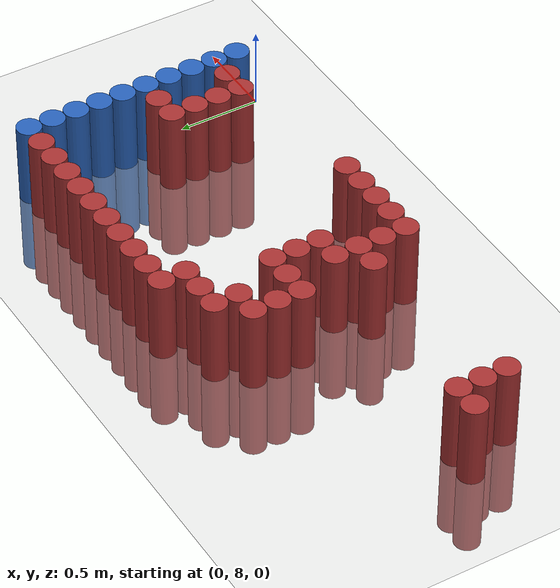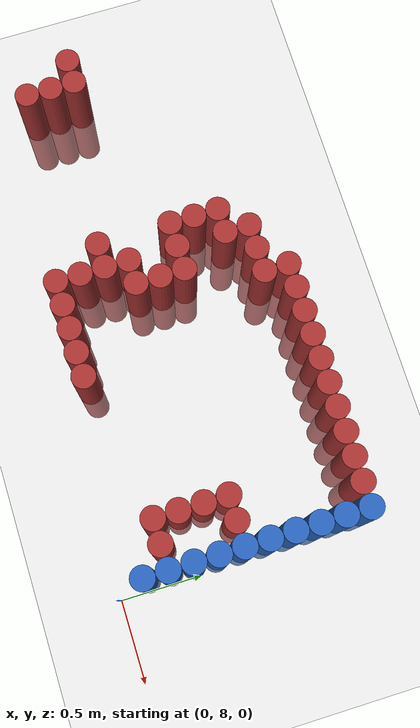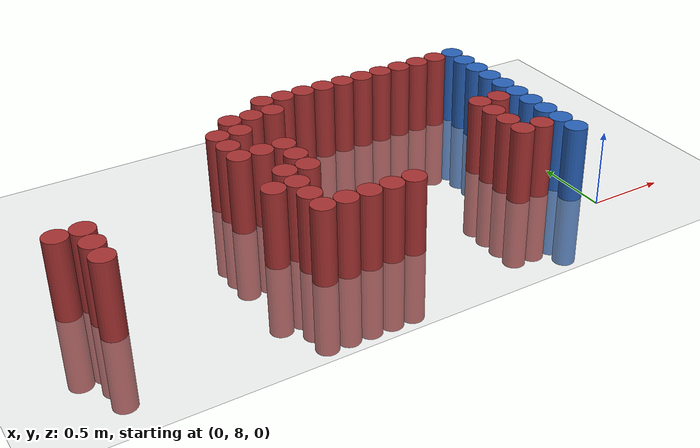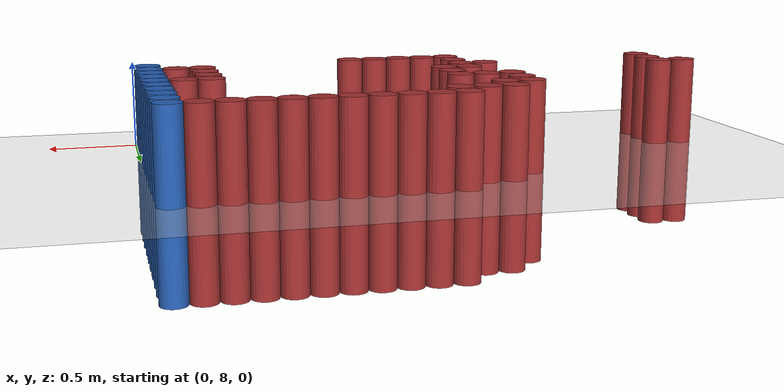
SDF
<sdf version="1.6">
 <world name="default">
  <model name="ground_plane">
   <static>1</static>
   <link name="link">
    <collision name="collision">
     <geometry><plane><normal>0 0 1</normal><size>100 100</size></plane></geometry>
     <surface><friction><ode><mu>100</mu><mu2>50</mu2></ode></friction></surface>
    </collision>
    <visual name="visual">
     <cast_shadows>0</cast_shadows>
     <geometry><plane><normal>0 0 1</normal><size>100 100</size></plane></geometry>
     <material>
      <script><uri>file://media/materials/scripts/gazebo.material</uri><name>Gazebo/Grey</name></script>
     </material>
    </visual>
   </link>
  </model>
  <model name="unit_cylinder_168">
   <static>1</static>
   <pose>-3.225000 8.625000 0.000000 0.000000 0.000000 0.000000</pose>
   <link name="link">
    <inertial>
     <mass>1</mass>
     <inertia><ixx>0.145833</ixx><ixy>0</ixy><ixz>0</ixz><iyy>0.145833</iyy><iyz>0</iyz><izz>0.125</izz></inertia>
    </inertial>
    <collision name="collision">
     <geometry><cylinder><radius>0.075000</radius><length>1</length></cylinder></geometry>
    </collision>
    <visual name="visual">
     <geometry><cylinder><radius>0.075000</radius><length>1</length></cylinder></geometry>
     <material>
      <ambient>0.648000 0.192000 0.192000 1</ambient>
      <diffuse>0.648000 0.192000 0.192000 1</diffuse>
     </material>
     <material>
      <script><name>Gazebo/Grey</name><uri>file://media/materials/scripts/gazebo.material</uri></script>
     </material>
    </visual>
   </link>
  </model>
  <model name="unit_cylinder_175">
   <static>1</static>
   <pose>-3.075000 8.325000 0.000000 0.000000 0.000000 0.000000</pose>
   <link name="link">
    <inertial>
     <mass>1</mass>
     <inertia><ixx>0.145833</ixx><ixy>0</ixy><ixz>0</ixz><iyy>0.145833</iyy><iyz>0</iyz><izz>0.125</izz></inertia>
    </inertial>
    <collision name="collision">
     <geometry><cylinder><radius>0.075000</radius><length>1</length></cylinder></geometry>
    </collision>
    <visual name="visual">
     <geometry><cylinder><radius>0.075000</radius><length>1</length></cylinder></geometry>
     <material>
      <ambient>0.648000 0.192000 0.192000 1</ambient>
      <diffuse>0.648000 0.192000 0.192000 1</diffuse>
     </material>
     <material>
      <script><name>Gazebo/Grey</name><uri>file://media/materials/scripts/gazebo.material</uri></script>
     </material>
    </visual>
   </link>
  </model>
  <model name="unit_cylinder_176">
   <static>1</static>
   <pose>-3.075000 8.475000 0.000000 0.000000 0.000000 0.000000</pose>
   <link name="link">
    <inertial>
     <mass>1</mass>
     <inertia><ixx>0.145833</ixx><ixy>0</ixy><ixz>0</ixz><iyy>0.145833</iyy><iyz>0</iyz><izz>0.125</izz></inertia>
    </inertial>
    <collision name="collision">
     <geometry><cylinder><radius>0.075000</radius><length>1</length></cylinder></geometry>
    </collision>
    <visual name="visual">
     <geometry><cylinder><radius>0.075000</radius><length>1</length></cylinder></geometry>
     <material>
      <ambient>0.648000 0.192000 0.192000 1</ambient>
      <diffuse>0.648000 0.192000 0.192000 1</diffuse>
     </material>
     <material>
      <script><name>Gazebo/Grey</name><uri>file://media/materials/scripts/gazebo.material</uri></script>
     </material>
    </visual>
   </link>
  </model>
  <model name="unit_cylinder_177">
   <static>1</static>
   <pose>-3.075000 8.625000 0.000000 0.000000 0.000000 0.000000</pose>
   <link name="link">
    <inertial>
     <mass>1</mass>
     <inertia><ixx>0.145833</ixx><ixy>0</ixy><ixz>0</ixz><iyy>0.145833</iyy><iyz>0</iyz><izz>0.125</izz></inertia>
    </inertial>
    <collision name="collision">
     <geometry><cylinder><radius>0.075000</radius><length>1</length></cylinder></geometry>
    </collision>
    <visual name="visual">
     <geometry><cylinder><radius>0.075000</radius><length>1</length></cylinder></geometry>
     <material>
      <ambient>0.648000 0.192000 0.192000 1</ambient>
      <diffuse>0.648000 0.192000 0.192000 1</diffuse>
     </material>
     <material>
      <script><name>Gazebo/Grey</name><uri>file://media/materials/scripts/gazebo.material</uri></script>
     </material>
    </visual>
   </link>
  </model>
  <model name="unit_cylinder_180">
   <static>1</static>
   <pose>-2.025000 8.475000 0.000000 0.000000 0.000000 0.000000</pose>
   <link name="link">
    <inertial>
     <mass>1</mass>
     <inertia><ixx>0.145833</ixx><ixy>0</ixy><ixz>0</ixz><iyy>0.145833</iyy><iyz>0</iyz><izz>0.125</izz></inertia>
    </inertial>
    <collision name="collision">
     <geometry><cylinder><radius>0.075000</radius><length>1</length></cylinder></geometry>
    </collision>
    <visual name="visual">
     <geometry><cylinder><radius>0.075000</radius><length>1</length></cylinder></geometry>
     <material>
      <ambient>0.648000 0.192000 0.192000 1</ambient>
      <diffuse>0.648000 0.192000 0.192000 1</diffuse>
     </material>
     <material>
      <script><name>Gazebo/Grey</name><uri>file://media/materials/scripts/gazebo.material</uri></script>
     </material>
    </visual>
   </link>
  </model>
  <model name="unit_cylinder_181">
   <static>1</static>
   <pose>-2.025000 8.925000 0.000000 0.000000 0.000000 0.000000</pose>
   <link name="link">
    <inertial>
     <mass>1</mass>
     <inertia><ixx>0.145833</ixx><ixy>0</ixy><ixz>0</ixz><iyy>0.145833</iyy><iyz>0</iyz><izz>0.125</izz></inertia>
    </inertial>
    <collision name="collision">
     <geometry><cylinder><radius>0.075000</radius><length>1</length></cylinder></geometry>
    </collision>
    <visual name="visual">
     <geometry><cylinder><radius>0.075000</radius><length>1</length></cylinder></geometry>
     <material>
      <ambient>0.648000 0.192000 0.192000 1</ambient>
      <diffuse>0.648000 0.192000 0.192000 1</diffuse>
     </material>
     <material>
      <script><name>Gazebo/Grey</name><uri>file://media/materials/scripts/gazebo.material</uri></script>
     </material>
    </visual>
   </link>
  </model>
  <model name="unit_cylinder_182">
   <static>1</static>
   <pose>-2.025000 9.075000 0.000000 0.000000 0.000000 0.000000</pose>
   <link name="link">
    <inertial>
     <mass>1</mass>
     <inertia><ixx>0.145833</ixx><ixy>0</ixy><ixz>0</ixz><iyy>0.145833</iyy><iyz>0</iyz><izz>0.125</izz></inertia>
    </inertial>
    <collision name="collision">
     <geometry><cylinder><radius>0.075000</radius><length>1</length></cylinder></geometry>
    </collision>
    <visual name="visual">
     <geometry><cylinder><radius>0.075000</radius><length>1</length></cylinder></geometry>
     <material>
      <ambient>0.648000 0.192000 0.192000 1</ambient>
      <diffuse>0.648000 0.192000 0.192000 1</diffuse>
     </material>
     <material>
      <script><name>Gazebo/Grey</name><uri>file://media/materials/scripts/gazebo.material</uri></script>
     </material>
    </visual>
   </link>
  </model>
  <model name="unit_cylinder_183">
   <static>1</static>
   <pose>-2.025000 9.225000 0.000000 0.000000 0.000000 0.000000</pose>
   <link name="link">
    <inertial>
     <mass>1</mass>
     <inertia><ixx>0.145833</ixx><ixy>0</ixy><ixz>0</ixz><iyy>0.145833</iyy><iyz>0</iyz><izz>0.125</izz></inertia>
    </inertial>
    <collision name="collision">
     <geometry><cylinder><radius>0.075000</radius><length>1</length></cylinder></geometry>
    </collision>
    <visual name="visual">
     <geometry><cylinder><radius>0.075000</radius><length>1</length></cylinder></geometry>
     <material>
      <ambient>0.648000 0.192000 0.192000 1</ambient>
      <diffuse>0.648000 0.192000 0.192000 1</diffuse>
     </material>
     <material>
      <script><name>Gazebo/Grey</name><uri>file://media/materials/scripts/gazebo.material</uri></script>
     </material>
    </visual>
   </link>
  </model>
  <model name="unit_cylinder_188">
   <static>1</static>
   <pose>-1.875000 8.175000 0.000000 0.000000 0.000000 0.000000</pose>
   <link name="link">
    <inertial>
     <mass>1</mass>
     <inertia><ixx>0.145833</ixx><ixy>0</ixy><ixz>0</ixz><iyy>0.145833</iyy><iyz>0</iyz><izz>0.125</izz></inertia>
    </inertial>
    <collision name="collision">
     <geometry><cylinder><radius>0.075000</radius><length>1</length></cylinder></geometry>
    </collision>
    <visual name="visual">
     <geometry><cylinder><radius>0.075000</radius><length>1</length></cylinder></geometry>
     <material>
      <ambient>0.648000 0.192000 0.192000 1</ambient>
      <diffuse>0.648000 0.192000 0.192000 1</diffuse>
     </material>
     <material>
      <script><name>Gazebo/Grey</name><uri>file://media/materials/scripts/gazebo.material</uri></script>
     </material>
    </visual>
   </link>
  </model>
  <model name="unit_cylinder_189">
   <static>1</static>
   <pose>-1.875000 8.325000 0.000000 0.000000 0.000000 0.000000</pose>
   <link name="link">
    <inertial>
     <mass>1</mass>
     <inertia><ixx>0.145833</ixx><ixy>0</ixy><ixz>0</ixz><iyy>0.145833</iyy><iyz>0</iyz><izz>0.125</izz></inertia>
    </inertial>
    <collision name="collision">
     <geometry><cylinder><radius>0.075000</radius><length>1</length></cylinder></geometry>
    </collision>
    <visual name="visual">
     <geometry><cylinder><radius>0.075000</radius><length>1</length></cylinder></geometry>
     <material>
      <ambient>0.648000 0.192000 0.192000 1</ambient>
      <diffuse>0.648000 0.192000 0.192000 1</diffuse>
     </material>
     <material>
      <script><name>Gazebo/Grey</name><uri>file://media/materials/scripts/gazebo.material</uri></script>
     </material>
    </visual>
   </link>
  </model>
  <model name="unit_cylinder_190">
   <static>1</static>
   <pose>-1.875000 8.475000 0.000000 0.000000 0.000000 0.000000</pose>
   <link name="link">
    <inertial>
     <mass>1</mass>
     <inertia><ixx>0.145833</ixx><ixy>0</ixy><ixz>0</ixz><iyy>0.145833</iyy><iyz>0</iyz><izz>0.125</izz></inertia>
    </inertial>
    <collision name="collision">
     <geometry><cylinder><radius>0.075000</radius><length>1</length></cylinder></geometry>
    </collision>
    <visual name="visual">
     <geometry><cylinder><radius>0.075000</radius><length>1</length></cylinder></geometry>
     <material>
      <ambient>0.648000 0.192000 0.192000 1</ambient>
      <diffuse>0.648000 0.192000 0.192000 1</diffuse>
     </material>
     <material>
      <script><name>Gazebo/Grey</name><uri>file://media/materials/scripts/gazebo.material</uri></script>
     </material>
    </visual>
   </link>
  </model>
  <model name="unit_cylinder_191">
   <static>1</static>
   <pose>-1.875000 8.625000 0.000000 0.000000 0.000000 0.000000</pose>
   <link name="link">
    <inertial>
     <mass>1</mass>
     <inertia><ixx>0.145833</ixx><ixy>0</ixy><ixz>0</ixz><iyy>0.145833</iyy><iyz>0</iyz><izz>0.125</izz></inertia>
    </inertial>
    <collision name="collision">
     <geometry><cylinder><radius>0.075000</radius><length>1</length></cylinder></geometry>
    </collision>
    <visual name="visual">
     <geometry><cylinder><radius>0.075000</radius><length>1</length></cylinder></geometry>
     <material>
      <ambient>0.648000 0.192000 0.192000 1</ambient>
      <diffuse>0.648000 0.192000 0.192000 1</diffuse>
     </material>
     <material>
      <script><name>Gazebo/Grey</name><uri>file://media/materials/scripts/gazebo.material</uri></script>
     </material>
    </visual>
   </link>
  </model>
  <model name="unit_cylinder_192">
   <static>1</static>
   <pose>-1.875000 8.925000 0.000000 0.000000 0.000000 0.000000</pose>
   <link name="link">
    <inertial>
     <mass>1</mass>
     <inertia><ixx>0.145833</ixx><ixy>0</ixy><ixz>0</ixz><iyy>0.145833</iyy><iyz>0</iyz><izz>0.125</izz></inertia>
    </inertial>
    <collision name="collision">
     <geometry><cylinder><radius>0.075000</radius><length>1</length></cylinder></geometry>
    </collision>
    <visual name="visual">
     <geometry><cylinder><radius>0.075000</radius><length>1</length></cylinder></geometry>
     <material>
      <ambient>0.648000 0.192000 0.192000 1</ambient>
      <diffuse>0.648000 0.192000 0.192000 1</diffuse>
     </material>
     <material>
      <script><name>Gazebo/Grey</name><uri>file://media/materials/scripts/gazebo.material</uri></script>
     </material>
    </visual>
   </link>
  </model>
  <model name="unit_cylinder_193">
   <static>1</static>
   <pose>-1.875000 9.225000 0.000000 0.000000 0.000000 0.000000</pose>
   <link name="link">
    <inertial>
     <mass>1</mass>
     <inertia><ixx>0.145833</ixx><ixy>0</ixy><ixz>0</ixz><iyy>0.145833</iyy><iyz>0</iyz><izz>0.125</izz></inertia>
    </inertial>
    <collision name="collision">
     <geometry><cylinder><radius>0.075000</radius><length>1</length></cylinder></geometry>
    </collision>
    <visual name="visual">
     <geometry><cylinder><radius>0.075000</radius><length>1</length></cylinder></geometry>
     <material>
      <ambient>0.648000 0.192000 0.192000 1</ambient>
      <diffuse>0.648000 0.192000 0.192000 1</diffuse>
     </material>
     <material>
      <script><name>Gazebo/Grey</name><uri>file://media/materials/scripts/gazebo.material</uri></script>
     </material>
    </visual>
   </link>
  </model>
  <model name="unit_cylinder_194">
   <static>1</static>
   <pose>-1.875000 9.375000 0.000000 0.000000 0.000000 0.000000</pose>
   <link name="link">
    <inertial>
     <mass>1</mass>
     <inertia><ixx>0.145833</ixx><ixy>0</ixy><ixz>0</ixz><iyy>0.145833</iyy><iyz>0</iyz><izz>0.125</izz></inertia>
    </inertial>
    <collision name="collision">
     <geometry><cylinder><radius>0.075000</radius><length>1</length></cylinder></geometry>
    </collision>
    <visual name="visual">
     <geometry><cylinder><radius>0.075000</radius><length>1</length></cylinder></geometry>
     <material>
      <ambient>0.648000 0.192000 0.192000 1</ambient>
      <diffuse>0.648000 0.192000 0.192000 1</diffuse>
     </material>
     <material>
      <script><name>Gazebo/Grey</name><uri>file://media/materials/scripts/gazebo.material</uri></script>
     </material>
    </visual>
   </link>
  </model>
  <model name="unit_cylinder_200">
   <static>1</static>
   <pose>-1.725000 8.175000 0.000000 0.000000 0.000000 0.000000</pose>
   <link name="link">
    <inertial>
     <mass>1</mass>
     <inertia><ixx>0.145833</ixx><ixy>0</ixy><ixz>0</ixz><iyy>0.145833</iyy><iyz>0</iyz><izz>0.125</izz></inertia>
    </inertial>
    <collision name="collision">
     <geometry><cylinder><radius>0.075000</radius><length>1</length></cylinder></geometry>
    </collision>
    <visual name="visual">
     <geometry><cylinder><radius>0.075000</radius><length>1</length></cylinder></geometry>
     <material>
      <ambient>0.648000 0.192000 0.192000 1</ambient>
      <diffuse>0.648000 0.192000 0.192000 1</diffuse>
     </material>
     <material>
      <script><name>Gazebo/Grey</name><uri>file://media/materials/scripts/gazebo.material</uri></script>
     </material>
    </visual>
   </link>
  </model>
  <model name="unit_cylinder_201">
   <static>1</static>
   <pose>-1.725000 8.625000 0.000000 0.000000 0.000000 0.000000</pose>
   <link name="link">
    <inertial>
     <mass>1</mass>
     <inertia><ixx>0.145833</ixx><ixy>0</ixy><ixz>0</ixz><iyy>0.145833</iyy><iyz>0</iyz><izz>0.125</izz></inertia>
    </inertial>
    <collision name="collision">
     <geometry><cylinder><radius>0.075000</radius><length>1</length></cylinder></geometry>
    </collision>
    <visual name="visual">
     <geometry><cylinder><radius>0.075000</radius><length>1</length></cylinder></geometry>
     <material>
      <ambient>0.648000 0.192000 0.192000 1</ambient>
      <diffuse>0.648000 0.192000 0.192000 1</diffuse>
     </material>
     <material>
      <script><name>Gazebo/Grey</name><uri>file://media/materials/scripts/gazebo.material</uri></script>
     </material>
    </visual>
   </link>
  </model>
  <model name="unit_cylinder_202">
   <static>1</static>
   <pose>-1.725000 8.775000 0.000000 0.000000 0.000000 0.000000</pose>
   <link name="link">
    <inertial>
     <mass>1</mass>
     <inertia><ixx>0.145833</ixx><ixy>0</ixy><ixz>0</ixz><iyy>0.145833</iyy><iyz>0</iyz><izz>0.125</izz></inertia>
    </inertial>
    <collision name="collision">
     <geometry><cylinder><radius>0.075000</radius><length>1</length></cylinder></geometry>
    </collision>
    <visual name="visual">
     <geometry><cylinder><radius>0.075000</radius><length>1</length></cylinder></geometry>
     <material>
      <ambient>0.648000 0.192000 0.192000 1</ambient>
      <diffuse>0.648000 0.192000 0.192000 1</diffuse>
     </material>
     <material>
      <script><name>Gazebo/Grey</name><uri>file://media/materials/scripts/gazebo.material</uri></script>
     </material>
    </visual>
   </link>
  </model>
  <model name="unit_cylinder_203">
   <static>1</static>
   <pose>-1.725000 8.925000 0.000000 0.000000 0.000000 0.000000</pose>
   <link name="link">
    <inertial>
     <mass>1</mass>
     <inertia><ixx>0.145833</ixx><ixy>0</ixy><ixz>0</ixz><iyy>0.145833</iyy><iyz>0</iyz><izz>0.125</izz></inertia>
    </inertial>
    <collision name="collision">
     <geometry><cylinder><radius>0.075000</radius><length>1</length></cylinder></geometry>
    </collision>
    <visual name="visual">
     <geometry><cylinder><radius>0.075000</radius><length>1</length></cylinder></geometry>
     <material>
      <ambient>0.648000 0.192000 0.192000 1</ambient>
      <diffuse>0.648000 0.192000 0.192000 1</diffuse>
     </material>
     <material>
      <script><name>Gazebo/Grey</name><uri>file://media/materials/scripts/gazebo.material</uri></script>
     </material>
    </visual>
   </link>
  </model>
  <model name="unit_cylinder_204">
   <static>1</static>
   <pose>-1.725000 9.375000 0.000000 0.000000 0.000000 0.000000</pose>
   <link name="link">
    <inertial>
     <mass>1</mass>
     <inertia><ixx>0.145833</ixx><ixy>0</ixy><ixz>0</ixz><iyy>0.145833</iyy><iyz>0</iyz><izz>0.125</izz></inertia>
    </inertial>
    <collision name="collision">
     <geometry><cylinder><radius>0.075000</radius><length>1</length></cylinder></geometry>
    </collision>
    <visual name="visual">
     <geometry><cylinder><radius>0.075000</radius><length>1</length></cylinder></geometry>
     <material>
      <ambient>0.648000 0.192000 0.192000 1</ambient>
      <diffuse>0.648000 0.192000 0.192000 1</diffuse>
     </material>
     <material>
      <script><name>Gazebo/Grey</name><uri>file://media/materials/scripts/gazebo.material</uri></script>
     </material>
    </visual>
   </link>
  </model>
  <model name="unit_cylinder_211">
   <static>1</static>
   <pose>-1.575000 8.175000 0.000000 0.000000 0.000000 0.000000</pose>
   <link name="link">
    <inertial>
     <mass>1</mass>
     <inertia><ixx>0.145833</ixx><ixy>0</ixy><ixz>0</ixz><iyy>0.145833</iyy><iyz>0</iyz><izz>0.125</izz></inertia>
    </inertial>
    <collision name="collision">
     <geometry><cylinder><radius>0.075000</radius><length>1</length></cylinder></geometry>
    </collision>
    <visual name="visual">
     <geometry><cylinder><radius>0.075000</radius><length>1</length></cylinder></geometry>
     <material>
      <ambient>0.648000 0.192000 0.192000 1</ambient>
      <diffuse>0.648000 0.192000 0.192000 1</diffuse>
     </material>
     <material>
      <script><name>Gazebo/Grey</name><uri>file://media/materials/scripts/gazebo.material</uri></script>
     </material>
    </visual>
   </link>
  </model>
  <model name="unit_cylinder_212">
   <static>1</static>
   <pose>-1.575000 9.375000 0.000000 0.000000 0.000000 0.000000</pose>
   <link name="link">
    <inertial>
     <mass>1</mass>
     <inertia><ixx>0.145833</ixx><ixy>0</ixy><ixz>0</ixz><iyy>0.145833</iyy><iyz>0</iyz><izz>0.125</izz></inertia>
    </inertial>
    <collision name="collision">
     <geometry><cylinder><radius>0.075000</radius><length>1</length></cylinder></geometry>
    </collision>
    <visual name="visual">
     <geometry><cylinder><radius>0.075000</radius><length>1</length></cylinder></geometry>
     <material>
      <ambient>0.648000 0.192000 0.192000 1</ambient>
      <diffuse>0.648000 0.192000 0.192000 1</diffuse>
     </material>
     <material>
      <script><name>Gazebo/Grey</name><uri>file://media/materials/scripts/gazebo.material</uri></script>
     </material>
    </visual>
   </link>
  </model>
  <model name="unit_cylinder_213">
   <static>1</static>
   <pose>-1.575000 9.525000 0.000000 0.000000 0.000000 0.000000</pose>
   <link name="link">
    <inertial>
     <mass>1</mass>
     <inertia><ixx>0.145833</ixx><ixy>0</ixy><ixz>0</ixz><iyy>0.145833</iyy><iyz>0</iyz><izz>0.125</izz></inertia>
    </inertial>
    <collision name="collision">
     <geometry><cylinder><radius>0.075000</radius><length>1</length></cylinder></geometry>
    </collision>
    <visual name="visual">
     <geometry><cylinder><radius>0.075000</radius><length>1</length></cylinder></geometry>
     <material>
      <ambient>0.648000 0.192000 0.192000 1</ambient>
      <diffuse>0.648000 0.192000 0.192000 1</diffuse>
     </material>
     <material>
      <script><name>Gazebo/Grey</name><uri>file://media/materials/scripts/gazebo.material</uri></script>
     </material>
    </visual>
   </link>
  </model>
  <model name="unit_cylinder_220">
   <static>1</static>
   <pose>-1.425000 8.175000 0.000000 0.000000 0.000000 0.000000</pose>
   <link name="link">
    <inertial>
     <mass>1</mass>
     <inertia><ixx>0.145833</ixx><ixy>0</ixy><ixz>0</ixz><iyy>0.145833</iyy><iyz>0</iyz><izz>0.125</izz></inertia>
    </inertial>
    <collision name="collision">
     <geometry><cylinder><radius>0.075000</radius><length>1</length></cylinder></geometry>
    </collision>
    <visual name="visual">
     <geometry><cylinder><radius>0.075000</radius><length>1</length></cylinder></geometry>
     <material>
      <ambient>0.648000 0.192000 0.192000 1</ambient>
      <diffuse>0.648000 0.192000 0.192000 1</diffuse>
     </material>
     <material>
      <script><name>Gazebo/Grey</name><uri>file://media/materials/scripts/gazebo.material</uri></script>
     </material>
    </visual>
   </link>
  </model>
  <model name="unit_cylinder_221">
   <static>1</static>
   <pose>-1.425000 9.525000 0.000000 0.000000 0.000000 0.000000</pose>
   <link name="link">
    <inertial>
     <mass>1</mass>
     <inertia><ixx>0.145833</ixx><ixy>0</ixy><ixz>0</ixz><iyy>0.145833</iyy><iyz>0</iyz><izz>0.125</izz></inertia>
    </inertial>
    <collision name="collision">
     <geometry><cylinder><radius>0.075000</radius><length>1</length></cylinder></geometry>
    </collision>
    <visual name="visual">
     <geometry><cylinder><radius>0.075000</radius><length>1</length></cylinder></geometry>
     <material>
      <ambient>0.648000 0.192000 0.192000 1</ambient>
      <diffuse>0.648000 0.192000 0.192000 1</diffuse>
     </material>
     <material>
      <script><name>Gazebo/Grey</name><uri>file://media/materials/scripts/gazebo.material</uri></script>
     </material>
    </visual>
   </link>
  </model>
  <model name="unit_cylinder_227">
   <static>1</static>
   <pose>-1.275000 8.175000 0.000000 0.000000 0.000000 0.000000</pose>
   <link name="link">
    <inertial>
     <mass>1</mass>
     <inertia><ixx>0.145833</ixx><ixy>0</ixy><ixz>0</ixz><iyy>0.145833</iyy><iyz>0</iyz><izz>0.125</izz></inertia>
    </inertial>
    <collision name="collision">
     <geometry><cylinder><radius>0.075000</radius><length>1</length></cylinder></geometry>
    </collision>
    <visual name="visual">
     <geometry><cylinder><radius>0.075000</radius><length>1</length></cylinder></geometry>
     <material>
      <ambient>0.648000 0.192000 0.192000 1</ambient>
      <diffuse>0.648000 0.192000 0.192000 1</diffuse>
     </material>
     <material>
      <script><name>Gazebo/Grey</name><uri>file://media/materials/scripts/gazebo.material</uri></script>
     </material>
    </visual>
   </link>
  </model>
  <model name="unit_cylinder_228">
   <static>1</static>
   <pose>-1.275000 9.525000 0.000000 0.000000 0.000000 0.000000</pose>
   <link name="link">
    <inertial>
     <mass>1</mass>
     <inertia><ixx>0.145833</ixx><ixy>0</ixy><ixz>0</ixz><iyy>0.145833</iyy><iyz>0</iyz><izz>0.125</izz></inertia>
    </inertial>
    <collision name="collision">
     <geometry><cylinder><radius>0.075000</radius><length>1</length></cylinder></geometry>
    </collision>
    <visual name="visual">
     <geometry><cylinder><radius>0.075000</radius><length>1</length></cylinder></geometry>
     <material>
      <ambient>0.648000 0.192000 0.192000 1</ambient>
      <diffuse>0.648000 0.192000 0.192000 1</diffuse>
     </material>
     <material>
      <script><name>Gazebo/Grey</name><uri>file://media/materials/scripts/gazebo.material</uri></script>
     </material>
    </visual>
   </link>
  </model>
  <model name="unit_cylinder_231">
   <static>1</static>
   <pose>-1.125000 9.525000 0.000000 0.000000 0.000000 0.000000</pose>
   <link name="link">
    <inertial>
     <mass>1</mass>
     <inertia><ixx>0.145833</ixx><ixy>0</ixy><ixz>0</ixz><iyy>0.145833</iyy><iyz>0</iyz><izz>0.125</izz></inertia>
    </inertial>
    <collision name="collision">
     <geometry><cylinder><radius>0.075000</radius><length>1</length></cylinder></geometry>
    </collision>
    <visual name="visual">
     <geometry><cylinder><radius>0.075000</radius><length>1</length></cylinder></geometry>
     <material>
      <ambient>0.648000 0.192000 0.192000 1</ambient>
      <diffuse>0.648000 0.192000 0.192000 1</diffuse>
     </material>
     <material>
      <script><name>Gazebo/Grey</name><uri>file://media/materials/scripts/gazebo.material</uri></script>
     </material>
    </visual>
   </link>
  </model>
  <model name="unit_cylinder_233">
   <static>1</static>
   <pose>-0.975000 9.525000 0.000000 0.000000 0.000000 0.000000</pose>
   <link name="link">
    <inertial>
     <mass>1</mass>
     <inertia><ixx>0.145833</ixx><ixy>0</ixy><ixz>0</ixz><iyy>0.145833</iyy><iyz>0</iyz><izz>0.125</izz></inertia>
    </inertial>
    <collision name="collision">
     <geometry><cylinder><radius>0.075000</radius><length>1</length></cylinder></geometry>
    </collision>
    <visual name="visual">
     <geometry><cylinder><radius>0.075000</radius><length>1</length></cylinder></geometry>
     <material>
      <ambient>0.648000 0.192000 0.192000 1</ambient>
      <diffuse>0.648000 0.192000 0.192000 1</diffuse>
     </material>
     <material>
      <script><name>Gazebo/Grey</name><uri>file://media/materials/scripts/gazebo.material</uri></script>
     </material>
    </visual>
   </link>
  </model>
  <model name="unit_cylinder_236">
   <static>1</static>
   <pose>-0.825000 9.525000 0.000000 0.000000 0.000000 0.000000</pose>
   <link name="link">
    <inertial>
     <mass>1</mass>
     <inertia><ixx>0.145833</ixx><ixy>0</ixy><ixz>0</ixz><iyy>0.145833</iyy><iyz>0</iyz><izz>0.125</izz></inertia>
    </inertial>
    <collision name="collision">
     <geometry><cylinder><radius>0.075000</radius><length>1</length></cylinder></geometry>
    </collision>
    <visual name="visual">
     <geometry><cylinder><radius>0.075000</radius><length>1</length></cylinder></geometry>
     <material>
      <ambient>0.648000 0.192000 0.192000 1</ambient>
      <diffuse>0.648000 0.192000 0.192000 1</diffuse>
     </material>
     <material>
      <script><name>Gazebo/Grey</name><uri>file://media/materials/scripts/gazebo.material</uri></script>
     </material>
    </visual>
   </link>
  </model>
  <model name="unit_cylinder_239">
   <static>1</static>
   <pose>-0.675000 9.525000 0.000000 0.000000 0.000000 0.000000</pose>
   <link name="link">
    <inertial>
     <mass>1</mass>
     <inertia><ixx>0.145833</ixx><ixy>0</ixy><ixz>0</ixz><iyy>0.145833</iyy><iyz>0</iyz><izz>0.125</izz></inertia>
    </inertial>
    <collision name="collision">
     <geometry><cylinder><radius>0.075000</radius><length>1</length></cylinder></geometry>
    </collision>
    <visual name="visual">
     <geometry><cylinder><radius>0.075000</radius><length>1</length></cylinder></geometry>
     <material>
      <ambient>0.648000 0.192000 0.192000 1</ambient>
      <diffuse>0.648000 0.192000 0.192000 1</diffuse>
     </material>
     <material>
      <script><name>Gazebo/Grey</name><uri>file://media/materials/scripts/gazebo.material</uri></script>
     </material>
    </visual>
   </link>
  </model>
  <model name="unit_cylinder_246">
   <static>1</static>
   <pose>-0.525000 9.525000 0.000000 0.000000 0.000000 0.000000</pose>
   <link name="link">
    <inertial>
     <mass>1</mass>
     <inertia><ixx>0.145833</ixx><ixy>0</ixy><ixz>0</ixz><iyy>0.145833</iyy><iyz>0</iyz><izz>0.125</izz></inertia>
    </inertial>
    <collision name="collision">
     <geometry><cylinder><radius>0.075000</radius><length>1</length></cylinder></geometry>
    </collision>
    <visual name="visual">
     <geometry><cylinder><radius>0.075000</radius><length>1</length></cylinder></geometry>
     <material>
      <ambient>0.648000 0.192000 0.192000 1</ambient>
      <diffuse>0.648000 0.192000 0.192000 1</diffuse>
     </material>
     <material>
      <script><name>Gazebo/Grey</name><uri>file://media/materials/scripts/gazebo.material</uri></script>
     </material>
    </visual>
   </link>
  </model>
  <model name="unit_cylinder_258">
   <static>1</static>
   <pose>-0.375000 8.325000 0.000000 0.000000 0.000000 0.000000</pose>
   <link name="link">
    <inertial>
     <mass>1</mass>
     <inertia><ixx>0.145833</ixx><ixy>0</ixy><ixz>0</ixz><iyy>0.145833</iyy><iyz>0</iyz><izz>0.125</izz></inertia>
    </inertial>
    <collision name="collision">
     <geometry><cylinder><radius>0.075000</radius><length>1</length></cylinder></geometry>
    </collision>
    <visual name="visual">
     <geometry><cylinder><radius>0.075000</radius><length>1</length></cylinder></geometry>
     <material>
      <ambient>0.648000 0.192000 0.192000 1</ambient>
      <diffuse>0.648000 0.192000 0.192000 1</diffuse>
     </material>
     <material>
      <script><name>Gazebo/Grey</name><uri>file://media/materials/scripts/gazebo.material</uri></script>
     </material>
    </visual>
   </link>
  </model>
  <model name="unit_cylinder_259">
   <static>1</static>
   <pose>-0.375000 8.475000 0.000000 0.000000 0.000000 0.000000</pose>
   <link name="link">
    <inertial>
     <mass>1</mass>
     <inertia><ixx>0.145833</ixx><ixy>0</ixy><ixz>0</ixz><iyy>0.145833</iyy><iyz>0</iyz><izz>0.125</izz></inertia>
    </inertial>
    <collision name="collision">
     <geometry><cylinder><radius>0.075000</radius><length>1</length></cylinder></geometry>
    </collision>
    <visual name="visual">
     <geometry><cylinder><radius>0.075000</radius><length>1</length></cylinder></geometry>
     <material>
      <ambient>0.648000 0.192000 0.192000 1</ambient>
      <diffuse>0.648000 0.192000 0.192000 1</diffuse>
     </material>
     <material>
      <script><name>Gazebo/Grey</name><uri>file://media/materials/scripts/gazebo.material</uri></script>
     </material>
    </visual>
   </link>
  </model>
  <model name="unit_cylinder_260">
   <static>1</static>
   <pose>-0.375000 8.625000 0.000000 0.000000 0.000000 0.000000</pose>
   <link name="link">
    <inertial>
     <mass>1</mass>
     <inertia><ixx>0.145833</ixx><ixy>0</ixy><ixz>0</ixz><iyy>0.145833</iyy><iyz>0</iyz><izz>0.125</izz></inertia>
    </inertial>
    <collision name="collision">
     <geometry><cylinder><radius>0.075000</radius><length>1</length></cylinder></geometry>
    </collision>
    <visual name="visual">
     <geometry><cylinder><radius>0.075000</radius><length>1</length></cylinder></geometry>
     <material>
      <ambient>0.648000 0.192000 0.192000 1</ambient>
      <diffuse>0.648000 0.192000 0.192000 1</diffuse>
     </material>
     <material>
      <script><name>Gazebo/Grey</name><uri>file://media/materials/scripts/gazebo.material</uri></script>
     </material>
    </visual>
   </link>
  </model>
  <model name="unit_cylinder_261">
   <static>1</static>
   <pose>-0.375000 8.775000 0.000000 0.000000 0.000000 0.000000</pose>
   <link name="link">
    <inertial>
     <mass>1</mass>
     <inertia><ixx>0.145833</ixx><ixy>0</ixy><ixz>0</ixz><iyy>0.145833</iyy><iyz>0</iyz><izz>0.125</izz></inertia>
    </inertial>
    <collision name="collision">
     <geometry><cylinder><radius>0.075000</radius><length>1</length></cylinder></geometry>
    </collision>
    <visual name="visual">
     <geometry><cylinder><radius>0.075000</radius><length>1</length></cylinder></geometry>
     <material>
      <ambient>0.648000 0.192000 0.192000 1</ambient>
      <diffuse>0.648000 0.192000 0.192000 1</diffuse>
     </material>
     <material>
      <script><name>Gazebo/Grey</name><uri>file://media/materials/scripts/gazebo.material</uri></script>
     </material>
    </visual>
   </link>
  </model>
  <model name="unit_cylinder_262">
   <static>1</static>
   <pose>-0.375000 9.525000 0.000000 0.000000 0.000000 0.000000</pose>
   <link name="link">
    <inertial>
     <mass>1</mass>
     <inertia><ixx>0.145833</ixx><ixy>0</ixy><ixz>0</ixz><iyy>0.145833</iyy><iyz>0</iyz><izz>0.125</izz></inertia>
    </inertial>
    <collision name="collision">
     <geometry><cylinder><radius>0.075000</radius><length>1</length></cylinder></geometry>
    </collision>
    <visual name="visual">
     <geometry><cylinder><radius>0.075000</radius><length>1</length></cylinder></geometry>
     <material>
      <ambient>0.648000 0.192000 0.192000 1</ambient>
      <diffuse>0.648000 0.192000 0.192000 1</diffuse>
     </material>
     <material>
      <script><name>Gazebo/Grey</name><uri>file://media/materials/scripts/gazebo.material</uri></script>
     </material>
    </visual>
   </link>
  </model>
  <model name="unit_cylinder_264">
   <static>1</static>
   <pose>-0.225000 8.325000 0.000000 0.000000 0.000000 0.000000</pose>
   <link name="link">
    <inertial>
     <mass>1</mass>
     <inertia><ixx>0.145833</ixx><ixy>0</ixy><ixz>0</ixz><iyy>0.145833</iyy><iyz>0</iyz><izz>0.125</izz></inertia>
    </inertial>
    <collision name="collision">
     <geometry><cylinder><radius>0.075000</radius><length>1</length></cylinder></geometry>
    </collision>
    <visual name="visual">
     <geometry><cylinder><radius>0.075000</radius><length>1</length></cylinder></geometry>
     <material>
      <ambient>0.648000 0.192000 0.192000 1</ambient>
      <diffuse>0.648000 0.192000 0.192000 1</diffuse>
     </material>
     <material>
      <script><name>Gazebo/Grey</name><uri>file://media/materials/scripts/gazebo.material</uri></script>
     </material>
    </visual>
   </link>
  </model>
  <model name="unit_cylinder_265">
   <static>1</static>
   <pose>-0.225000 8.775000 0.000000 0.000000 0.000000 0.000000</pose>
   <link name="link">
    <inertial>
     <mass>1</mass>
     <inertia><ixx>0.145833</ixx><ixy>0</ixy><ixz>0</ixz><iyy>0.145833</iyy><iyz>0</iyz><izz>0.125</izz></inertia>
    </inertial>
    <collision name="collision">
     <geometry><cylinder><radius>0.075000</radius><length>1</length></cylinder></geometry>
    </collision>
    <visual name="visual">
     <geometry><cylinder><radius>0.075000</radius><length>1</length></cylinder></geometry>
     <material>
      <ambient>0.648000 0.192000 0.192000 1</ambient>
      <diffuse>0.648000 0.192000 0.192000 1</diffuse>
     </material>
     <material>
      <script><name>Gazebo/Grey</name><uri>file://media/materials/scripts/gazebo.material</uri></script>
     </material>
    </visual>
   </link>
  </model>
  <model name="unit_cylinder_266">
   <static>1</static>
   <pose>-0.225000 9.525000 0.000000 0.000000 0.000000 0.000000</pose>
   <link name="link">
    <inertial>
     <mass>1</mass>
     <inertia><ixx>0.145833</ixx><ixy>0</ixy><ixz>0</ixz><iyy>0.145833</iyy><iyz>0</iyz><izz>0.125</izz></inertia>
    </inertial>
    <collision name="collision">
     <geometry><cylinder><radius>0.075000</radius><length>1</length></cylinder></geometry>
    </collision>
    <visual name="visual">
     <geometry><cylinder><radius>0.075000</radius><length>1</length></cylinder></geometry>
     <material>
      <ambient>0.648000 0.192000 0.192000 1</ambient>
      <diffuse>0.648000 0.192000 0.192000 1</diffuse>
     </material>
     <material>
      <script><name>Gazebo/Grey</name><uri>file://media/materials/scripts/gazebo.material</uri></script>
     </material>
    </visual>
   </link>
  </model>
  <model name="unit_cylinder_287">
   <static>1</static>
   <pose>-0.075000 8.175000 0.000000 0.000000 0.000000 0.000000</pose>
   <link name="link">
    <inertial>
     <mass>1</mass>
     <inertia><ixx>0.145833</ixx><ixy>0</ixy><ixz>0</ixz><iyy>0.145833</iyy><iyz>0</iyz><izz>0.125</izz></inertia>
    </inertial>
    <collision name="collision">
     <geometry><cylinder><radius>0.075000</radius><length>1</length></cylinder></geometry>
    </collision>
    <visual name="visual">
     <geometry><cylinder><radius>0.075000</radius><length>1</length></cylinder></geometry>
     <material>
      <ambient>0.152000 0.379000 0.720000 1</ambient>
      <diffuse>0.152000 0.379000 0.720000 1</diffuse>
     </material>
     <material>
      <script><name>Gazebo/Grey</name><uri>file://media/materials/scripts/gazebo.material</uri></script>
     </material>
    </visual>
   </link>
  </model>
  <model name="unit_cylinder_288">
   <static>1</static>
   <pose>-0.075000 8.325000 0.000000 0.000000 0.000000 0.000000</pose>
   <link name="link">
    <inertial>
     <mass>1</mass>
     <inertia><ixx>0.145833</ixx><ixy>0</ixy><ixz>0</ixz><iyy>0.145833</iyy><iyz>0</iyz><izz>0.125</izz></inertia>
    </inertial>
    <collision name="collision">
     <geometry><cylinder><radius>0.075000</radius><length>1</length></cylinder></geometry>
    </collision>
    <visual name="visual">
     <geometry><cylinder><radius>0.075000</radius><length>1</length></cylinder></geometry>
     <material>
      <ambient>0.152000 0.379000 0.720000 1</ambient>
      <diffuse>0.152000 0.379000 0.720000 1</diffuse>
     </material>
     <material>
      <script><name>Gazebo/Grey</name><uri>file://media/materials/scripts/gazebo.material</uri></script>
     </material>
    </visual>
   </link>
  </model>
  <model name="unit_cylinder_289">
   <static>1</static>
   <pose>-0.075000 8.475000 0.000000 0.000000 0.000000 0.000000</pose>
   <link name="link">
    <inertial>
     <mass>1</mass>
     <inertia><ixx>0.145833</ixx><ixy>0</ixy><ixz>0</ixz><iyy>0.145833</iyy><iyz>0</iyz><izz>0.125</izz></inertia>
    </inertial>
    <collision name="collision">
     <geometry><cylinder><radius>0.075000</radius><length>1</length></cylinder></geometry>
    </collision>
    <visual name="visual">
     <geometry><cylinder><radius>0.075000</radius><length>1</length></cylinder></geometry>
     <material>
      <ambient>0.152000 0.379000 0.720000 1</ambient>
      <diffuse>0.152000 0.379000 0.720000 1</diffuse>
     </material>
     <material>
      <script><name>Gazebo/Grey</name><uri>file://media/materials/scripts/gazebo.material</uri></script>
     </material>
    </visual>
   </link>
  </model>
  <model name="unit_cylinder_290">
   <static>1</static>
   <pose>-0.075000 8.625000 0.000000 0.000000 0.000000 0.000000</pose>
   <link name="link">
    <inertial>
     <mass>1</mass>
     <inertia><ixx>0.145833</ixx><ixy>0</ixy><ixz>0</ixz><iyy>0.145833</iyy><iyz>0</iyz><izz>0.125</izz></inertia>
    </inertial>
    <collision name="collision">
     <geometry><cylinder><radius>0.075000</radius><length>1</length></cylinder></geometry>
    </collision>
    <visual name="visual">
     <geometry><cylinder><radius>0.075000</radius><length>1</length></cylinder></geometry>
     <material>
      <ambient>0.152000 0.379000 0.720000 1</ambient>
      <diffuse>0.152000 0.379000 0.720000 1</diffuse>
     </material>
     <material>
      <script><name>Gazebo/Grey</name><uri>file://media/materials/scripts/gazebo.material</uri></script>
     </material>
    </visual>
   </link>
  </model>
  <model name="unit_cylinder_291">
   <static>1</static>
   <pose>-0.075000 8.775000 0.000000 0.000000 0.000000 0.000000</pose>
   <link name="link">
    <inertial>
     <mass>1</mass>
     <inertia><ixx>0.145833</ixx><ixy>0</ixy><ixz>0</ixz><iyy>0.145833</iyy><iyz>0</iyz><izz>0.125</izz></inertia>
    </inertial>
    <collision name="collision">
     <geometry><cylinder><radius>0.075000</radius><length>1</length></cylinder></geometry>
    </collision>
    <visual name="visual">
     <geometry><cylinder><radius>0.075000</radius><length>1</length></cylinder></geometry>
     <material>
      <ambient>0.152000 0.379000 0.720000 1</ambient>
      <diffuse>0.152000 0.379000 0.720000 1</diffuse>
     </material>
     <material>
      <script><name>Gazebo/Grey</name><uri>file://media/materials/scripts/gazebo.material</uri></script>
     </material>
    </visual>
   </link>
  </model>
  <model name="unit_cylinder_292">
   <static>1</static>
   <pose>-0.075000 8.925000 0.000000 0.000000 0.000000 0.000000</pose>
   <link name="link">
    <inertial>
     <mass>1</mass>
     <inertia><ixx>0.145833</ixx><ixy>0</ixy><ixz>0</ixz><iyy>0.145833</iyy><iyz>0</iyz><izz>0.125</izz></inertia>
    </inertial>
    <collision name="collision">
     <geometry><cylinder><radius>0.075000</radius><length>1</length></cylinder></geometry>
    </collision>
    <visual name="visual">
     <geometry><cylinder><radius>0.075000</radius><length>1</length></cylinder></geometry>
     <material>
      <ambient>0.152000 0.379000 0.720000 1</ambient>
      <diffuse>0.152000 0.379000 0.720000 1</diffuse>
     </material>
     <material>
      <script><name>Gazebo/Grey</name><uri>file://media/materials/scripts/gazebo.material</uri></script>
     </material>
    </visual>
   </link>
  </model>
  <model name="unit_cylinder_293">
   <static>1</static>
   <pose>-0.075000 9.075000 0.000000 0.000000 0.000000 0.000000</pose>
   <link name="link">
    <inertial>
     <mass>1</mass>
     <inertia><ixx>0.145833</ixx><ixy>0</ixy><ixz>0</ixz><iyy>0.145833</iyy><iyz>0</iyz><izz>0.125</izz></inertia>
    </inertial>
    <collision name="collision">
     <geometry><cylinder><radius>0.075000</radius><length>1</length></cylinder></geometry>
    </collision>
    <visual name="visual">
     <geometry><cylinder><radius>0.075000</radius><length>1</length></cylinder></geometry>
     <material>
      <ambient>0.152000 0.379000 0.720000 1</ambient>
      <diffuse>0.152000 0.379000 0.720000 1</diffuse>
     </material>
     <material>
      <script><name>Gazebo/Grey</name><uri>file://media/materials/scripts/gazebo.material</uri></script>
     </material>
    </visual>
   </link>
  </model>
  <model name="unit_cylinder_294">
   <static>1</static>
   <pose>-0.075000 9.225000 0.000000 0.000000 0.000000 0.000000</pose>
   <link name="link">
    <inertial>
     <mass>1</mass>
     <inertia><ixx>0.145833</ixx><ixy>0</ixy><ixz>0</ixz><iyy>0.145833</iyy><iyz>0</iyz><izz>0.125</izz></inertia>
    </inertial>
    <collision name="collision">
     <geometry><cylinder><radius>0.075000</radius><length>1</length></cylinder></geometry>
    </collision>
    <visual name="visual">
     <geometry><cylinder><radius>0.075000</radius><length>1</length></cylinder></geometry>
     <material>
      <ambient>0.152000 0.379000 0.720000 1</ambient>
      <diffuse>0.152000 0.379000 0.720000 1</diffuse>
     </material>
     <material>
      <script><name>Gazebo/Grey</name><uri>file://media/materials/scripts/gazebo.material</uri></script>
     </material>
    </visual>
   </link>
  </model>
  <model name="unit_cylinder_295">
   <static>1</static>
   <pose>-0.075000 9.375000 0.000000 0.000000 0.000000 0.000000</pose>
   <link name="link">
    <inertial>
     <mass>1</mass>
     <inertia><ixx>0.145833</ixx><ixy>0</ixy><ixz>0</ixz><iyy>0.145833</iyy><iyz>0</iyz><izz>0.125</izz></inertia>
    </inertial>
    <collision name="collision">
     <geometry><cylinder><radius>0.075000</radius><length>1</length></cylinder></geometry>
    </collision>
    <visual name="visual">
     <geometry><cylinder><radius>0.075000</radius><length>1</length></cylinder></geometry>
     <material>
      <ambient>0.152000 0.379000 0.720000 1</ambient>
      <diffuse>0.152000 0.379000 0.720000 1</diffuse>
     </material>
     <material>
      <script><name>Gazebo/Grey</name><uri>file://media/materials/scripts/gazebo.material</uri></script>
     </material>
    </visual>
   </link>
  </model>
  <model name="unit_cylinder_296">
   <static>1</static>
   <pose>-0.075000 9.525000 0.000000 0.000000 0.000000 0.000000</pose>
   <link name="link">
    <inertial>
     <mass>1</mass>
     <inertia><ixx>0.145833</ixx><ixy>0</ixy><ixz>0</ixz><iyy>0.145833</iyy><iyz>0</iyz><izz>0.125</izz></inertia>
    </inertial>
    <collision name="collision">
     <geometry><cylinder><radius>0.075000</radius><length>1</length></cylinder></geometry>
    </collision>
    <visual name="visual">
     <geometry><cylinder><radius>0.075000</radius><length>1</length></cylinder></geometry>
     <material>
      <ambient>0.152000 0.379000 0.720000 1</ambient>
      <diffuse>0.152000 0.379000 0.720000 1</diffuse>
     </material>
     <material>
      <script><name>Gazebo/Grey</name><uri>file://media/materials/scripts/gazebo.material</uri></script>
     </material>
    </visual>
   </link>
  </model>
 </world>
</sdf>
